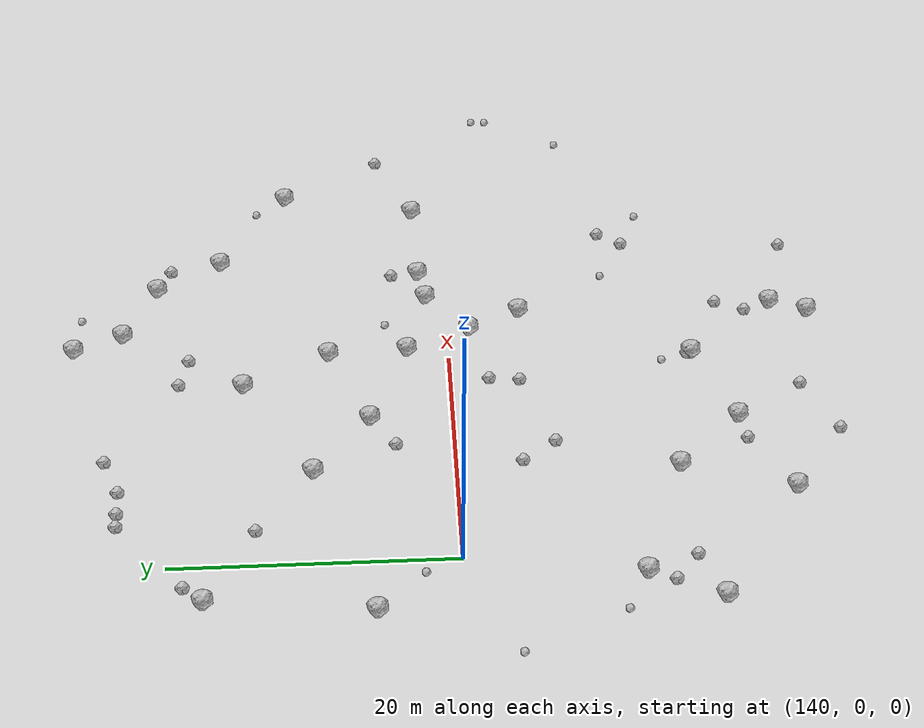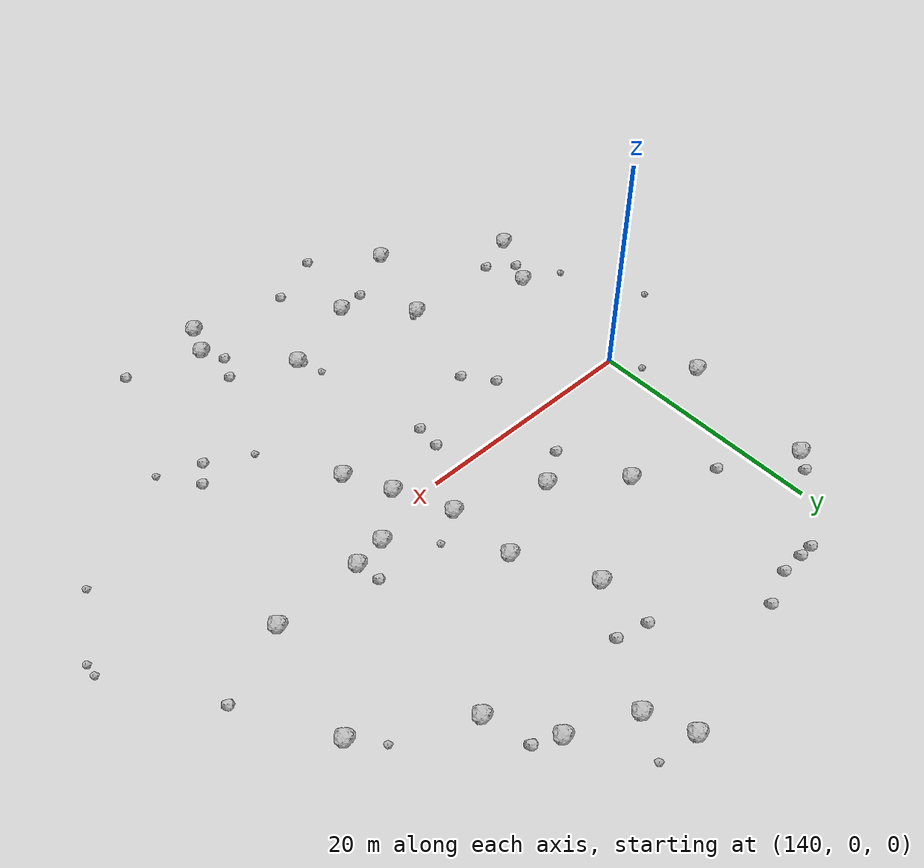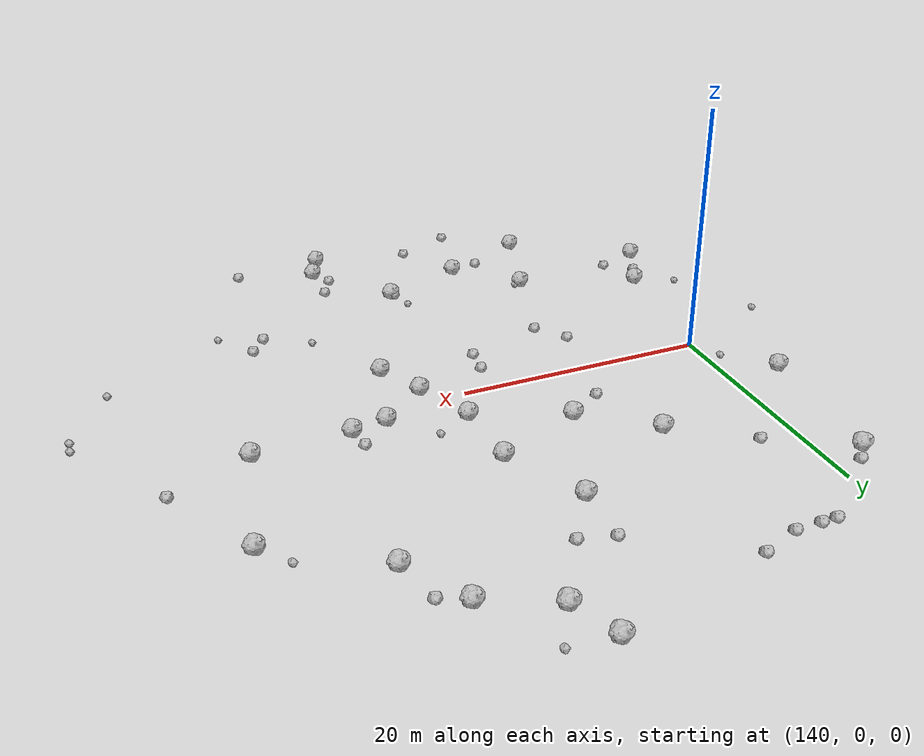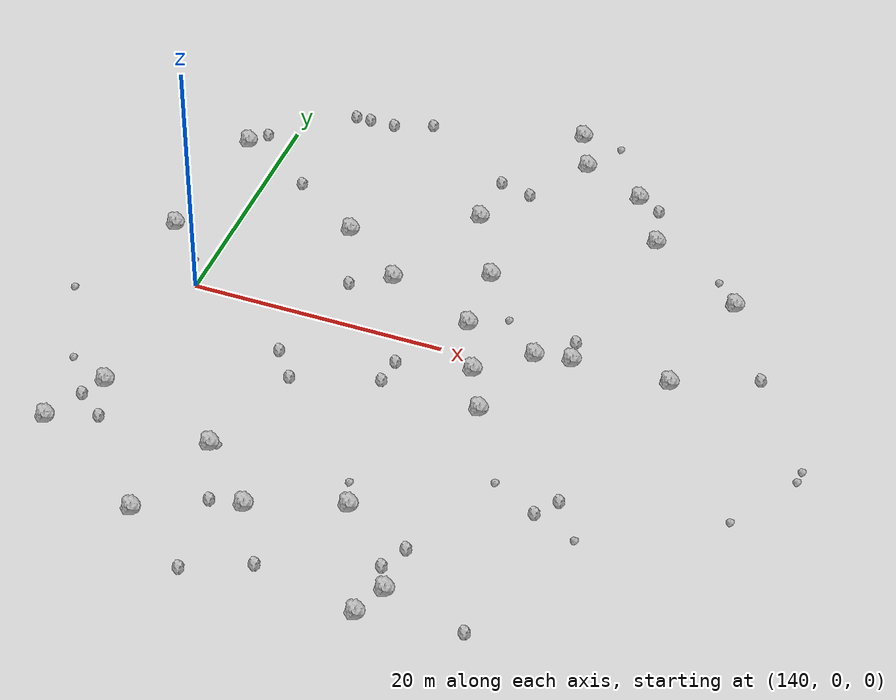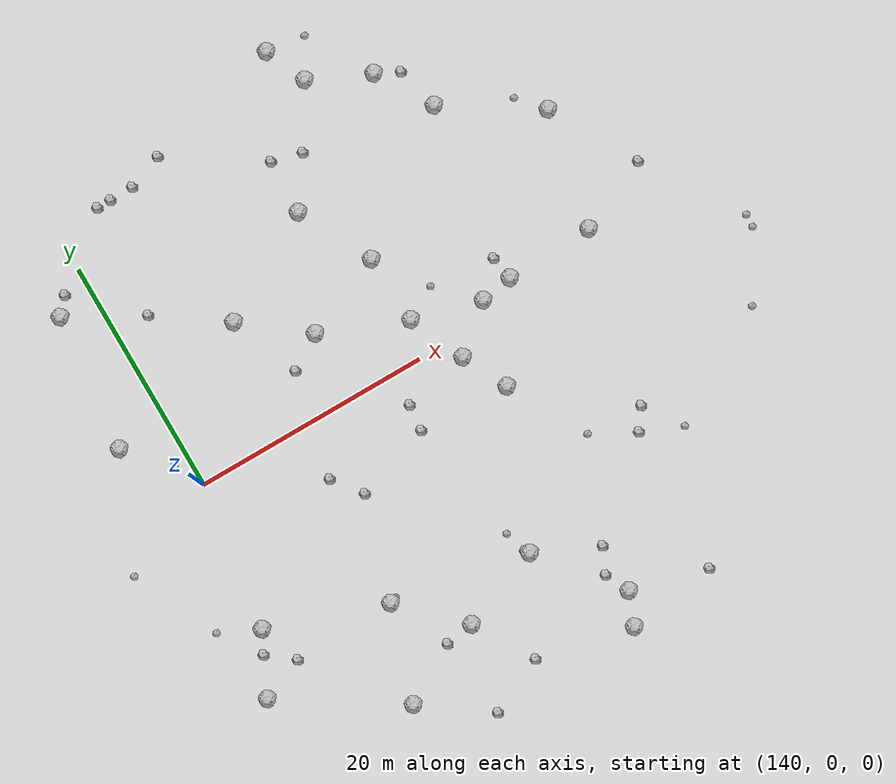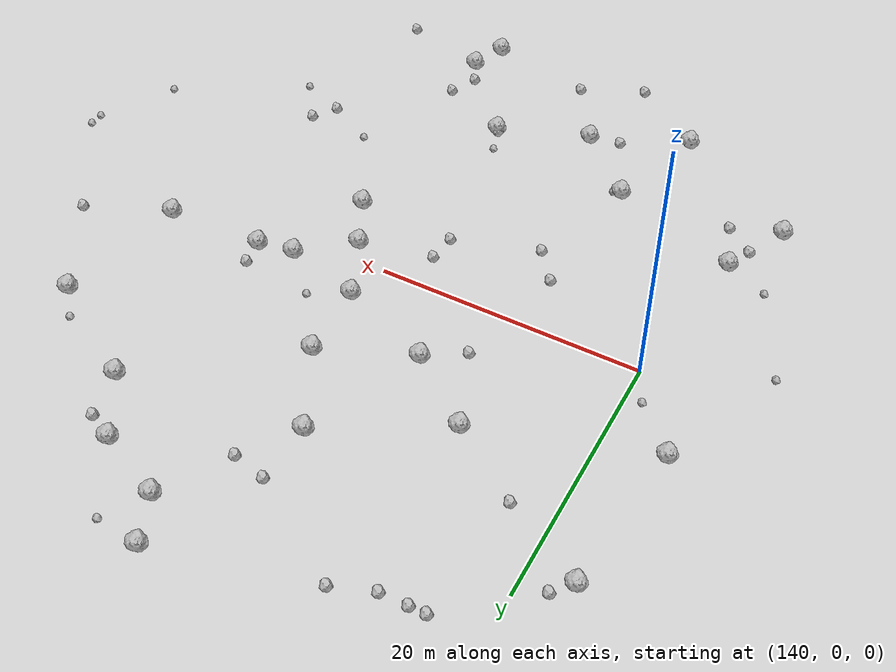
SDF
<sdf version="1.6">
 <world name="default">
  <include><uri>model://sun</uri></include>
  <model name="rock1_4_2">
   <include><uri>model://rock1</uri><pose>161.9014451396677 27.671803686783647 0.5 0 0 0</pose></include>
  </model>
  <model name="rock1_4_3">
   <include><uri>model://rock1</uri><pose>159.78125069055594 -17.819125813699216 0.5 0 0 0</pose></include>
  </model>
  <model name="rock1_4_4">
   <include><uri>model://rock1</uri><pose>153.8431406348599 5.995148151546594 0.5 0 0 0</pose></include>
  </model>
  <model name="rock1_4_5">
   <include><uri>model://rock1</uri><pose>165.07922976996792 -24.391854824739678 0.5 0 0 0</pose></include>
  </model>
  <model name="rock1_4_6">
   <include><uri>model://rock1</uri><pose>160.73632446136975 8.895897903749308 0.5 0 0 0</pose></include>
  </model>
  <model name="rock1_4_7">
   <include><uri>model://rock1</uri><pose>157.571719281543 15.1276106743681 0.5 0 0 0</pose></include>
  </model>
  <model name="rock1_4_8">
   <include><uri>model://rock1</uri><pose>136.86505409898515 17.433918996822804 0.5 0 0 0</pose></include>
  </model>
  <model name="rock1_4_9">
   <include><uri>model://rock1</uri><pose>148.66260154521066 10.076867200688248 0.5 0 0 0</pose></include>
  </model>
  <model name="rock1_4_10">
   <include><uri>model://rock1</uri><pose>138.30250275407735 -12.307395177436298 0.5 0 0 0</pose></include>
  </model>
  <model name="rock1_4_11">
   <include><uri>model://rock1</uri><pose>164.9502824702331 -5.40070888241172 0.5 0 0 0</pose></include>
  </model>
  <model name="rock1_4_12">
   <include><uri>model://rock1</uri><pose>168.4870544607413 21.785209659730512 0.5 0 0 0</pose></include>
  </model>
  <model name="rock1_4_13">
   <include><uri>model://rock1</uri><pose>179.11630342564973 12.197729951762554 0.5 0 0 0</pose></include>
  </model>
  <model name="rock1_4_14">
   <include><uri>model://rock1</uri><pose>135.8852939170743 -17.298368125754685 0.5 0 0 0</pose></include>
  </model>
  <model name="rock1_4_15">
   <include><uri>model://rock1</uri><pose>169.56977307058756 2.0009012152619547 0.5 0 0 0</pose></include>
  </model>
  <model name="rock1_4_16">
   <include><uri>model://rock1</uri><pose>166.8154902377156 1.5269019924992975 0.5 0 0 0</pose></include>
  </model>
  <model name="rock1_4_17">
   <include><uri>model://rock1</uri><pose>163.4075849666638 24.13744210626863 0.5 0 0 0</pose></include>
  </model>
  <model name="rock1_4_18">
   <include><uri>model://rock1</uri><pose>163.08665567424575 -1.5961805889170044 0.5 0 0 0</pose></include>
  </model>
  <model name="rock1_4_19">
   <include><uri>model://rock1</uri><pose>148.18596287586473 -15.670323701940925 0.5 0 0 0</pose></include>
  </model>
  <model name="rock1_4_20">
   <include><uri>model://rock1</uri><pose>161.01367971602394 3.0918382306947123 0.5 0 0 0</pose></include>
  </model>
  <model name="rock1_4_21">
   <include><uri>model://rock1</uri><pose>152.89598413078983 -20.39394947304007 0.5 0 0 0</pose></include>
  </model>
  <model name="rock1_4_22">
   <include><uri>model://rock1</uri><pose>171.36789003700912 17.100787966846937 0.5 0 0 0</pose></include>
  </model>
  <model name="rock1_4_23">
   <include><uri>model://rock1</uri><pose>135.6618390060308 5.879668338756041 0.5 0 0 0</pose></include>
  </model>
  <model name="rock1_4_24">
   <include><uri>model://rock1</uri><pose>163.99663927817105 -27.07834976501506 0.5 0 0 0</pose></include>
  </model>
  <model name="rock1_4_25">
   <include><uri>model://rock1</uri><pose>177.0374446153645 2.222976229361457 0.5 0 0 0</pose></include>
  </model>
  <model name="rock1_4_26">
   <include><uri>model://rock1</uri><pose>145.68034593687716 -23.539537113631624 0.5 0 0 0</pose></include>
  </model>
  <model name="rock2_4_0">
   <include><uri>model://rock2</uri><pose>172.1954054470694 -13.883103693870467 0.3 0 0 0</pose></include>
  </model>
  <model name="rock2_4_1">
   <include><uri>model://rock2</uri><pose>173.4316280345114 -12.151729078920603 0.3 0 0 0</pose></include>
  </model>
  <model name="rock2_4_2">
   <include><uri>model://rock2</uri><pose>142.98594568581046 14.02716615842914 0.3 0 0 0</pose></include>
  </model>
  <model name="rock2_4_3">
   <include><uri>model://rock2</uri><pose>155.87650145345307 -25.34034024640902 0.3 0 0 0</pose></include>
  </model>
  <model name="rock2_4_4">
   <include><uri>model://rock2</uri><pose>137.3409745215545 -14.133627864435605 0.3 0 0 0</pose></include>
  </model>
  <model name="rock2_4_5">
   <include><uri>model://rock2</uri><pose>150.77510417150867 -7.098907610529803 0.3 0 0 0</pose></include>
  </model>
  <model name="rock2_4_6">
   <include><uri>model://rock2</uri><pose>148.94181731933352 -4.669592588886779 0.3 0 0 0</pose></include>
  </model>
  <model name="rock2_4_7">
   <include><uri>model://rock2</uri><pose>150.05032179848354 24.739941511377985 0.3 0 0 0</pose></include>
  </model>
  <model name="rock2_4_8">
   <include><uri>model://rock2</uri><pose>171.51066945834287 -26.10072570948914 0.3 0 0 0</pose></include>
  </model>
  <model name="rock2_4_9">
   <include><uri>model://rock2</uri><pose>164.09102499568334 -22.385279414928988 0.3 0 0 0</pose></include>
  </model>
  <model name="rock2_4_10">
   <include><uri>model://rock2</uri><pose>147.05683177040413 23.632679523322395 0.3 0 0 0</pose></include>
  </model>
  <model name="rock2_4_11">
   <include><uri>model://rock2</uri><pose>150.43676995776156 -20.75864395563207 0.3 0 0 0</pose></include>
  </model>
  <model name="rock2_4_12">
   <include><uri>model://rock2</uri><pose>139.5012535422548 -15.839651767890325 0.3 0 0 0</pose></include>
  </model>
  <model name="rock2_4_13">
   <include><uri>model://rock2</uri><pose>157.4599079618833 -2.7737240933326603 0.3 0 0 0</pose></include>
  </model>
  <model name="rock2_4_14">
   <include><uri>model://rock2</uri><pose>160.2926449195725 19.137584657204016 0.3 0 0 0</pose></include>
  </model>
  <model name="rock2_4_15">
   <include><uri>model://rock2</uri><pose>150.93445149234503 4.206655265275046 0.3 0 0 0</pose></include>
  </model>
  <model name="rock2_4_16">
   <include><uri>model://rock2</uri><pose>145.01560134021972 23.599164459368147 0.3 0 0 0</pose></include>
  </model>
  <model name="rock2_4_17">
   <include><uri>model://rock2</uri><pose>138.02197699289476 18.811722659369735 0.3 0 0 0</pose></include>
  </model>
  <model name="rock2_4_18">
   <include><uri>model://rock2</uri><pose>159.51600461581805 -17.483610789611102 0.3 0 0 0</pose></include>
  </model>
  <model name="rock2_4_19">
   <include><uri>model://rock2</uri><pose>170.41936668853964 20.81775482646477 0.3 0 0 0</pose></include>
  </model>
  <model name="rock2_4_20">
   <include><uri>model://rock2</uri><pose>151.14144690868306 -27.492615614378305 0.3 0 0 0</pose></include>
  </model>
  <model name="rock2_4_21">
   <include><uri>model://rock2</uri><pose>183.22364920613188 4.942587818171141 0.3 0 0 0</pose></include>
  </model>
  <model name="rock2_4_22">
   <include><uri>model://rock2</uri><pose>157.71383531792108 19.79407685330311 0.3 0 0 0</pose></include>
  </model>
  <model name="rock2_4_23">
   <include><uri>model://rock2</uri><pose>143.79592009658708 23.586674537689156 0.3 0 0 0</pose></include>
  </model>
  <model name="rock2_4_24">
   <include><uri>model://rock2</uri><pose>169.2259903796069 4.026520835143039 0.3 0 0 0</pose></include>
  </model>
  <model name="rock2_4_25">
   <include><uri>model://rock2</uri><pose>165.07118485244413 -20.274958332708906 0.3 0 0 0</pose></include>
  </model>
  <model name="rock2_4_26">
   <include><uri>model://rock2</uri><pose>157.21761984345653 -4.989342763349505 0.3 0 0 0</pose></include>
  </model>
  <model name="rock3_4_0">
   <include><uri>model://rock3</uri><pose>163.7070932750353 4.62213335935251 0.2 0 0 0</pose></include>
  </model>
  <model name="rock3_4_1">
   <include><uri>model://rock3</uri><pose>148.71044089930604 -15.49953273201967 0.2 0 0 0</pose></include>
  </model>
  <model name="rock3_4_2">
   <include><uri>model://rock3</uri><pose>188.47003448357202 -4.285389510926695 0.2 0 0 0</pose></include>
  </model>
  <model name="rock3_4_3">
   <include><uri>model://rock3</uri><pose>165.17604269396503 27.264097975629554 0.2 0 0 0</pose></include>
  </model>
  <model name="rock3_4_4">
   <include><uri>model://rock3</uri><pose>188.53250098516455 -3.1892516283567716 0.2 0 0 0</pose></include>
  </model>
  <model name="rock3_4_5">
   <include><uri>model://rock3</uri><pose>134.94659827979436 -10.76829346432676 0.2 0 0 0</pose></include>
  </model>
  <model name="rock3_4_6">
   <include><uri>model://rock3</uri><pose>158.92925793039862 -15.6053969899835 0.2 0 0 0</pose></include>
  </model>
  <model name="rock3_4_7">
   <include><uri>model://rock3</uri><pose>131.53897777277976 -3.5630061752713154 0.2 0 0 0</pose></include>
  </model>
  <model name="rock3_4_8">
   <include><uri>model://rock3</uri><pose>177.20089010020155 14.37609822350597 0.2 0 0 0</pose></include>
  </model>
  <model name="rock3_4_9">
   <include><uri>model://rock3</uri><pose>175.60472741268248 -15.34112796005784 0.2 0 0 0</pose></include>
  </model>
  <model name="rock3_4_10">
   <include><uri>model://rock3</uri><pose>168.55874441881053 -11.973472869698984 0.2 0 0 0</pose></include>
  </model>
  <model name="rock3_4_11">
   <include><uri>model://rock3</uri><pose>185.17506527921861 -9.7860407979598 0.2 0 0 0</pose></include>
  </model>
  <model name="rock3_4_12">
   <include><uri>model://rock3</uri><pose>138.77184591259604 2.5256020968519195 0.2 0 0 0</pose></include>
  </model>
 </world>
</sdf>
